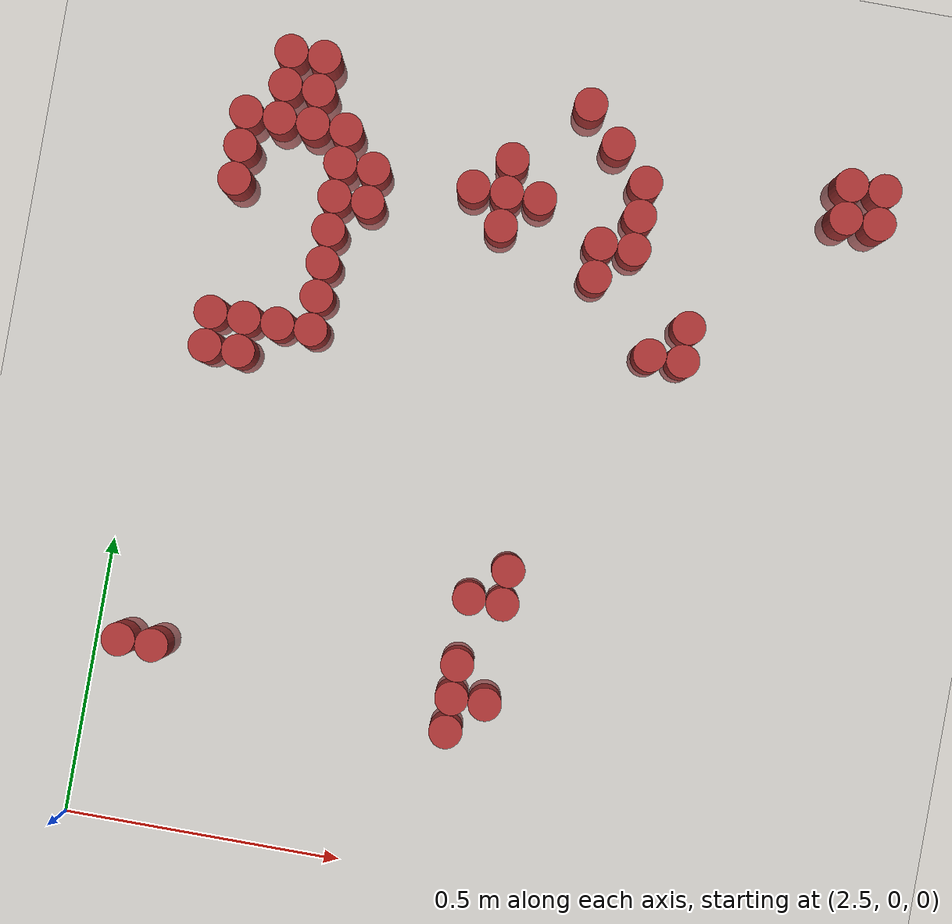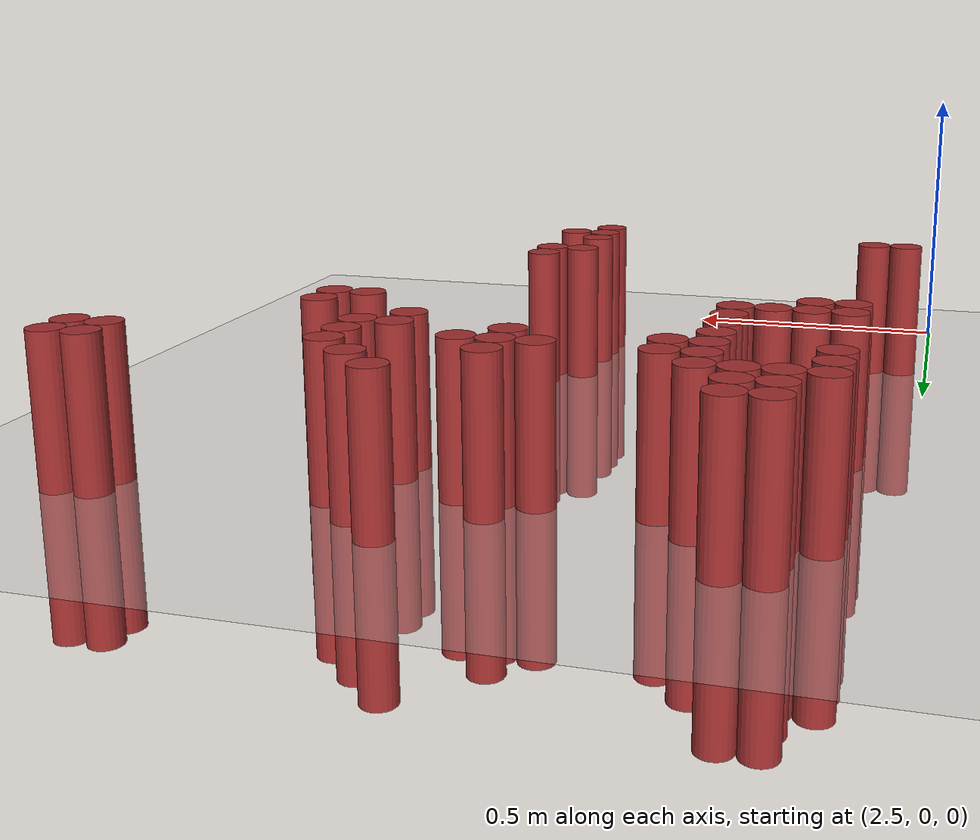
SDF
<sdf version="1.6">
 <world name="default">
  <model name="ground_plane">
   <static>1</static>
   <link name="link">
    <collision name="collision">
     <geometry><plane><normal>0 0 1</normal><size>100 100</size></plane></geometry>
     <surface><friction><ode><mu>100</mu><mu2>50</mu2></ode></friction></surface>
    </collision>
    <visual name="visual">
     <cast_shadows>0</cast_shadows>
     <geometry><plane><normal>0 0 1</normal><size>100 100</size></plane></geometry>
     <material>
      <script><uri>file://media/materials/scripts/gazebo.material</uri><name>Gazebo/Grey</name></script>
     </material>
    </visual>
   </link>
  </model>
  <model name="unit_cylinder_169">
   <static>1</static>
   <pose>2.670000 1.410000 0.000000 0.000000 0.000000 0.000000</pose>
   <link name="link">
    <inertial>
     <mass>1</mass>
     <inertia><ixx>0.145833</ixx><ixy>0</ixy><ixz>0</ixz><iyy>0.145833</iyy><iyz>0</iyz><izz>0.125</izz></inertia>
    </inertial>
    <collision name="collision">
     <geometry><cylinder><radius>0.030000</radius><length>0.5</length></cylinder></geometry>
    </collision>
    <visual name="visual">
     <geometry><cylinder><radius>0.030000</radius><length>0.5</length></cylinder></geometry>
     <material>
      <ambient>0.648000 0.192000 0.192000 1</ambient>
      <diffuse>0.648000 0.192000 0.192000 1</diffuse>
     </material>
     <material>
      <script><name>Gazebo/Grey</name><uri>file://media/materials/scripts/gazebo.material</uri></script>
     </material>
    </visual>
   </link>
  </model>
  <model name="unit_cylinder_170">
   <static>1</static>
   <pose>2.730000 1.410000 0.000000 0.000000 0.000000 0.000000</pose>
   <link name="link">
    <inertial>
     <mass>1</mass>
     <inertia><ixx>0.145833</ixx><ixy>0</ixy><ixz>0</ixz><iyy>0.145833</iyy><iyz>0</iyz><izz>0.125</izz></inertia>
    </inertial>
    <collision name="collision">
     <geometry><cylinder><radius>0.030000</radius><length>0.5</length></cylinder></geometry>
    </collision>
    <visual name="visual">
     <geometry><cylinder><radius>0.030000</radius><length>0.5</length></cylinder></geometry>
     <material>
      <ambient>0.648000 0.192000 0.192000 1</ambient>
      <diffuse>0.648000 0.192000 0.192000 1</diffuse>
     </material>
     <material>
      <script><name>Gazebo/Grey</name><uri>file://media/materials/scripts/gazebo.material</uri></script>
     </material>
    </visual>
   </link>
  </model>
  <model name="unit_cylinder_171">
   <static>1</static>
   <pose>3.210000 1.410000 0.000000 0.000000 0.000000 0.000000</pose>
   <link name="link">
    <inertial>
     <mass>1</mass>
     <inertia><ixx>0.145833</ixx><ixy>0</ixy><ixz>0</ixz><iyy>0.145833</iyy><iyz>0</iyz><izz>0.125</izz></inertia>
    </inertial>
    <collision name="collision">
     <geometry><cylinder><radius>0.030000</radius><length>0.5</length></cylinder></geometry>
    </collision>
    <visual name="visual">
     <geometry><cylinder><radius>0.030000</radius><length>0.5</length></cylinder></geometry>
     <material>
      <ambient>0.648000 0.192000 0.192000 1</ambient>
      <diffuse>0.648000 0.192000 0.192000 1</diffuse>
     </material>
     <material>
      <script><name>Gazebo/Grey</name><uri>file://media/materials/scripts/gazebo.material</uri></script>
     </material>
    </visual>
   </link>
  </model>
  <model name="unit_cylinder_178">
   <static>1</static>
   <pose>2.670000 1.350000 0.000000 0.000000 0.000000 0.000000</pose>
   <link name="link">
    <inertial>
     <mass>1</mass>
     <inertia><ixx>0.145833</ixx><ixy>0</ixy><ixz>0</ixz><iyy>0.145833</iyy><iyz>0</iyz><izz>0.125</izz></inertia>
    </inertial>
    <collision name="collision">
     <geometry><cylinder><radius>0.030000</radius><length>0.5</length></cylinder></geometry>
    </collision>
    <visual name="visual">
     <geometry><cylinder><radius>0.030000</radius><length>0.5</length></cylinder></geometry>
     <material>
      <ambient>0.648000 0.192000 0.192000 1</ambient>
      <diffuse>0.648000 0.192000 0.192000 1</diffuse>
     </material>
     <material>
      <script><name>Gazebo/Grey</name><uri>file://media/materials/scripts/gazebo.material</uri></script>
     </material>
    </visual>
   </link>
  </model>
  <model name="unit_cylinder_179">
   <static>1</static>
   <pose>2.730000 1.350000 0.000000 0.000000 0.000000 0.000000</pose>
   <link name="link">
    <inertial>
     <mass>1</mass>
     <inertia><ixx>0.145833</ixx><ixy>0</ixy><ixz>0</ixz><iyy>0.145833</iyy><iyz>0</iyz><izz>0.125</izz></inertia>
    </inertial>
    <collision name="collision">
     <geometry><cylinder><radius>0.030000</radius><length>0.5</length></cylinder></geometry>
    </collision>
    <visual name="visual">
     <geometry><cylinder><radius>0.030000</radius><length>0.5</length></cylinder></geometry>
     <material>
      <ambient>0.648000 0.192000 0.192000 1</ambient>
      <diffuse>0.648000 0.192000 0.192000 1</diffuse>
     </material>
     <material>
      <script><name>Gazebo/Grey</name><uri>file://media/materials/scripts/gazebo.material</uri></script>
     </material>
    </visual>
   </link>
  </model>
  <model name="unit_cylinder_180">
   <static>1</static>
   <pose>3.270000 1.350000 0.000000 0.000000 0.000000 0.000000</pose>
   <link name="link">
    <inertial>
     <mass>1</mass>
     <inertia><ixx>0.145833</ixx><ixy>0</ixy><ixz>0</ixz><iyy>0.145833</iyy><iyz>0</iyz><izz>0.125</izz></inertia>
    </inertial>
    <collision name="collision">
     <geometry><cylinder><radius>0.030000</radius><length>0.5</length></cylinder></geometry>
    </collision>
    <visual name="visual">
     <geometry><cylinder><radius>0.030000</radius><length>0.5</length></cylinder></geometry>
     <material>
      <ambient>0.648000 0.192000 0.192000 1</ambient>
      <diffuse>0.648000 0.192000 0.192000 1</diffuse>
     </material>
     <material>
      <script><name>Gazebo/Grey</name><uri>file://media/materials/scripts/gazebo.material</uri></script>
     </material>
    </visual>
   </link>
  </model>
  <model name="unit_cylinder_181">
   <static>1</static>
   <pose>3.690000 1.350000 0.000000 0.000000 0.000000 0.000000</pose>
   <link name="link">
    <inertial>
     <mass>1</mass>
     <inertia><ixx>0.145833</ixx><ixy>0</ixy><ixz>0</ixz><iyy>0.145833</iyy><iyz>0</iyz><izz>0.125</izz></inertia>
    </inertial>
    <collision name="collision">
     <geometry><cylinder><radius>0.030000</radius><length>0.5</length></cylinder></geometry>
    </collision>
    <visual name="visual">
     <geometry><cylinder><radius>0.030000</radius><length>0.5</length></cylinder></geometry>
     <material>
      <ambient>0.648000 0.192000 0.192000 1</ambient>
      <diffuse>0.648000 0.192000 0.192000 1</diffuse>
     </material>
     <material>
      <script><name>Gazebo/Grey</name><uri>file://media/materials/scripts/gazebo.material</uri></script>
     </material>
    </visual>
   </link>
  </model>
  <model name="unit_cylinder_182">
   <static>1</static>
   <pose>3.750000 1.350000 0.000000 0.000000 0.000000 0.000000</pose>
   <link name="link">
    <inertial>
     <mass>1</mass>
     <inertia><ixx>0.145833</ixx><ixy>0</ixy><ixz>0</ixz><iyy>0.145833</iyy><iyz>0</iyz><izz>0.125</izz></inertia>
    </inertial>
    <collision name="collision">
     <geometry><cylinder><radius>0.030000</radius><length>0.5</length></cylinder></geometry>
    </collision>
    <visual name="visual">
     <geometry><cylinder><radius>0.030000</radius><length>0.5</length></cylinder></geometry>
     <material>
      <ambient>0.648000 0.192000 0.192000 1</ambient>
      <diffuse>0.648000 0.192000 0.192000 1</diffuse>
     </material>
     <material>
      <script><name>Gazebo/Grey</name><uri>file://media/materials/scripts/gazebo.material</uri></script>
     </material>
    </visual>
   </link>
  </model>
  <model name="unit_cylinder_184">
   <static>1</static>
   <pose>2.610000 1.290000 0.000000 0.000000 0.000000 0.000000</pose>
   <link name="link">
    <inertial>
     <mass>1</mass>
     <inertia><ixx>0.145833</ixx><ixy>0</ixy><ixz>0</ixz><iyy>0.145833</iyy><iyz>0</iyz><izz>0.125</izz></inertia>
    </inertial>
    <collision name="collision">
     <geometry><cylinder><radius>0.030000</radius><length>0.5</length></cylinder></geometry>
    </collision>
    <visual name="visual">
     <geometry><cylinder><radius>0.030000</radius><length>0.5</length></cylinder></geometry>
     <material>
      <ambient>0.648000 0.192000 0.192000 1</ambient>
      <diffuse>0.648000 0.192000 0.192000 1</diffuse>
     </material>
     <material>
      <script><name>Gazebo/Grey</name><uri>file://media/materials/scripts/gazebo.material</uri></script>
     </material>
    </visual>
   </link>
  </model>
  <model name="unit_cylinder_185">
   <static>1</static>
   <pose>2.670000 1.290000 0.000000 0.000000 0.000000 0.000000</pose>
   <link name="link">
    <inertial>
     <mass>1</mass>
     <inertia><ixx>0.145833</ixx><ixy>0</ixy><ixz>0</ixz><iyy>0.145833</iyy><iyz>0</iyz><izz>0.125</izz></inertia>
    </inertial>
    <collision name="collision">
     <geometry><cylinder><radius>0.030000</radius><length>0.5</length></cylinder></geometry>
    </collision>
    <visual name="visual">
     <geometry><cylinder><radius>0.030000</radius><length>0.5</length></cylinder></geometry>
     <material>
      <ambient>0.648000 0.192000 0.192000 1</ambient>
      <diffuse>0.648000 0.192000 0.192000 1</diffuse>
     </material>
     <material>
      <script><name>Gazebo/Grey</name><uri>file://media/materials/scripts/gazebo.material</uri></script>
     </material>
    </visual>
   </link>
  </model>
  <model name="unit_cylinder_186">
   <static>1</static>
   <pose>2.730000 1.290000 0.000000 0.000000 0.000000 0.000000</pose>
   <link name="link">
    <inertial>
     <mass>1</mass>
     <inertia><ixx>0.145833</ixx><ixy>0</ixy><ixz>0</ixz><iyy>0.145833</iyy><iyz>0</iyz><izz>0.125</izz></inertia>
    </inertial>
    <collision name="collision">
     <geometry><cylinder><radius>0.030000</radius><length>0.5</length></cylinder></geometry>
    </collision>
    <visual name="visual">
     <geometry><cylinder><radius>0.030000</radius><length>0.5</length></cylinder></geometry>
     <material>
      <ambient>0.648000 0.192000 0.192000 1</ambient>
      <diffuse>0.648000 0.192000 0.192000 1</diffuse>
     </material>
     <material>
      <script><name>Gazebo/Grey</name><uri>file://media/materials/scripts/gazebo.material</uri></script>
     </material>
    </visual>
   </link>
  </model>
  <model name="unit_cylinder_187">
   <static>1</static>
   <pose>2.790000 1.290000 0.000000 0.000000 0.000000 0.000000</pose>
   <link name="link">
    <inertial>
     <mass>1</mass>
     <inertia><ixx>0.145833</ixx><ixy>0</ixy><ixz>0</ixz><iyy>0.145833</iyy><iyz>0</iyz><izz>0.125</izz></inertia>
    </inertial>
    <collision name="collision">
     <geometry><cylinder><radius>0.030000</radius><length>0.5</length></cylinder></geometry>
    </collision>
    <visual name="visual">
     <geometry><cylinder><radius>0.030000</radius><length>0.5</length></cylinder></geometry>
     <material>
      <ambient>0.648000 0.192000 0.192000 1</ambient>
      <diffuse>0.648000 0.192000 0.192000 1</diffuse>
     </material>
     <material>
      <script><name>Gazebo/Grey</name><uri>file://media/materials/scripts/gazebo.material</uri></script>
     </material>
    </visual>
   </link>
  </model>
  <model name="unit_cylinder_188">
   <static>1</static>
   <pose>3.090000 1.290000 0.000000 0.000000 0.000000 0.000000</pose>
   <link name="link">
    <inertial>
     <mass>1</mass>
     <inertia><ixx>0.145833</ixx><ixy>0</ixy><ixz>0</ixz><iyy>0.145833</iyy><iyz>0</iyz><izz>0.125</izz></inertia>
    </inertial>
    <collision name="collision">
     <geometry><cylinder><radius>0.030000</radius><length>0.5</length></cylinder></geometry>
    </collision>
    <visual name="visual">
     <geometry><cylinder><radius>0.030000</radius><length>0.5</length></cylinder></geometry>
     <material>
      <ambient>0.648000 0.192000 0.192000 1</ambient>
      <diffuse>0.648000 0.192000 0.192000 1</diffuse>
     </material>
     <material>
      <script><name>Gazebo/Grey</name><uri>file://media/materials/scripts/gazebo.material</uri></script>
     </material>
    </visual>
   </link>
  </model>
  <model name="unit_cylinder_189">
   <static>1</static>
   <pose>3.330000 1.290000 0.000000 0.000000 0.000000 0.000000</pose>
   <link name="link">
    <inertial>
     <mass>1</mass>
     <inertia><ixx>0.145833</ixx><ixy>0</ixy><ixz>0</ixz><iyy>0.145833</iyy><iyz>0</iyz><izz>0.125</izz></inertia>
    </inertial>
    <collision name="collision">
     <geometry><cylinder><radius>0.030000</radius><length>0.5</length></cylinder></geometry>
    </collision>
    <visual name="visual">
     <geometry><cylinder><radius>0.030000</radius><length>0.5</length></cylinder></geometry>
     <material>
      <ambient>0.648000 0.192000 0.192000 1</ambient>
      <diffuse>0.648000 0.192000 0.192000 1</diffuse>
     </material>
     <material>
      <script><name>Gazebo/Grey</name><uri>file://media/materials/scripts/gazebo.material</uri></script>
     </material>
    </visual>
   </link>
  </model>
  <model name="unit_cylinder_190">
   <static>1</static>
   <pose>3.690000 1.290000 0.000000 0.000000 0.000000 0.000000</pose>
   <link name="link">
    <inertial>
     <mass>1</mass>
     <inertia><ixx>0.145833</ixx><ixy>0</ixy><ixz>0</ixz><iyy>0.145833</iyy><iyz>0</iyz><izz>0.125</izz></inertia>
    </inertial>
    <collision name="collision">
     <geometry><cylinder><radius>0.030000</radius><length>0.5</length></cylinder></geometry>
    </collision>
    <visual name="visual">
     <geometry><cylinder><radius>0.030000</radius><length>0.5</length></cylinder></geometry>
     <material>
      <ambient>0.648000 0.192000 0.192000 1</ambient>
      <diffuse>0.648000 0.192000 0.192000 1</diffuse>
     </material>
     <material>
      <script><name>Gazebo/Grey</name><uri>file://media/materials/scripts/gazebo.material</uri></script>
     </material>
    </visual>
   </link>
  </model>
  <model name="unit_cylinder_191">
   <static>1</static>
   <pose>3.750000 1.290000 0.000000 0.000000 0.000000 0.000000</pose>
   <link name="link">
    <inertial>
     <mass>1</mass>
     <inertia><ixx>0.145833</ixx><ixy>0</ixy><ixz>0</ixz><iyy>0.145833</iyy><iyz>0</iyz><izz>0.125</izz></inertia>
    </inertial>
    <collision name="collision">
     <geometry><cylinder><radius>0.030000</radius><length>0.5</length></cylinder></geometry>
    </collision>
    <visual name="visual">
     <geometry><cylinder><radius>0.030000</radius><length>0.5</length></cylinder></geometry>
     <material>
      <ambient>0.648000 0.192000 0.192000 1</ambient>
      <diffuse>0.648000 0.192000 0.192000 1</diffuse>
     </material>
     <material>
      <script><name>Gazebo/Grey</name><uri>file://media/materials/scripts/gazebo.material</uri></script>
     </material>
    </visual>
   </link>
  </model>
  <model name="unit_cylinder_192">
   <static>1</static>
   <pose>2.610000 1.230000 0.000000 0.000000 0.000000 0.000000</pose>
   <link name="link">
    <inertial>
     <mass>1</mass>
     <inertia><ixx>0.145833</ixx><ixy>0</ixy><ixz>0</ixz><iyy>0.145833</iyy><iyz>0</iyz><izz>0.125</izz></inertia>
    </inertial>
    <collision name="collision">
     <geometry><cylinder><radius>0.030000</radius><length>0.5</length></cylinder></geometry>
    </collision>
    <visual name="visual">
     <geometry><cylinder><radius>0.030000</radius><length>0.5</length></cylinder></geometry>
     <material>
      <ambient>0.648000 0.192000 0.192000 1</ambient>
      <diffuse>0.648000 0.192000 0.192000 1</diffuse>
     </material>
     <material>
      <script><name>Gazebo/Grey</name><uri>file://media/materials/scripts/gazebo.material</uri></script>
     </material>
    </visual>
   </link>
  </model>
  <model name="unit_cylinder_193">
   <static>1</static>
   <pose>2.790000 1.230000 0.000000 0.000000 0.000000 0.000000</pose>
   <link name="link">
    <inertial>
     <mass>1</mass>
     <inertia><ixx>0.145833</ixx><ixy>0</ixy><ixz>0</ixz><iyy>0.145833</iyy><iyz>0</iyz><izz>0.125</izz></inertia>
    </inertial>
    <collision name="collision">
     <geometry><cylinder><radius>0.030000</radius><length>0.5</length></cylinder></geometry>
    </collision>
    <visual name="visual">
     <geometry><cylinder><radius>0.030000</radius><length>0.5</length></cylinder></geometry>
     <material>
      <ambient>0.648000 0.192000 0.192000 1</ambient>
      <diffuse>0.648000 0.192000 0.192000 1</diffuse>
     </material>
     <material>
      <script><name>Gazebo/Grey</name><uri>file://media/materials/scripts/gazebo.material</uri></script>
     </material>
    </visual>
   </link>
  </model>
  <model name="unit_cylinder_194">
   <static>1</static>
   <pose>2.850000 1.230000 0.000000 0.000000 0.000000 0.000000</pose>
   <link name="link">
    <inertial>
     <mass>1</mass>
     <inertia><ixx>0.145833</ixx><ixy>0</ixy><ixz>0</ixz><iyy>0.145833</iyy><iyz>0</iyz><izz>0.125</izz></inertia>
    </inertial>
    <collision name="collision">
     <geometry><cylinder><radius>0.030000</radius><length>0.5</length></cylinder></geometry>
    </collision>
    <visual name="visual">
     <geometry><cylinder><radius>0.030000</radius><length>0.5</length></cylinder></geometry>
     <material>
      <ambient>0.648000 0.192000 0.192000 1</ambient>
      <diffuse>0.648000 0.192000 0.192000 1</diffuse>
     </material>
     <material>
      <script><name>Gazebo/Grey</name><uri>file://media/materials/scripts/gazebo.material</uri></script>
     </material>
    </visual>
   </link>
  </model>
  <model name="unit_cylinder_195">
   <static>1</static>
   <pose>3.030000 1.230000 0.000000 0.000000 0.000000 0.000000</pose>
   <link name="link">
    <inertial>
     <mass>1</mass>
     <inertia><ixx>0.145833</ixx><ixy>0</ixy><ixz>0</ixz><iyy>0.145833</iyy><iyz>0</iyz><izz>0.125</izz></inertia>
    </inertial>
    <collision name="collision">
     <geometry><cylinder><radius>0.030000</radius><length>0.5</length></cylinder></geometry>
    </collision>
    <visual name="visual">
     <geometry><cylinder><radius>0.030000</radius><length>0.5</length></cylinder></geometry>
     <material>
      <ambient>0.648000 0.192000 0.192000 1</ambient>
      <diffuse>0.648000 0.192000 0.192000 1</diffuse>
     </material>
     <material>
      <script><name>Gazebo/Grey</name><uri>file://media/materials/scripts/gazebo.material</uri></script>
     </material>
    </visual>
   </link>
  </model>
  <model name="unit_cylinder_196">
   <static>1</static>
   <pose>3.090000 1.230000 0.000000 0.000000 0.000000 0.000000</pose>
   <link name="link">
    <inertial>
     <mass>1</mass>
     <inertia><ixx>0.145833</ixx><ixy>0</ixy><ixz>0</ixz><iyy>0.145833</iyy><iyz>0</iyz><izz>0.125</izz></inertia>
    </inertial>
    <collision name="collision">
     <geometry><cylinder><radius>0.030000</radius><length>0.5</length></cylinder></geometry>
    </collision>
    <visual name="visual">
     <geometry><cylinder><radius>0.030000</radius><length>0.5</length></cylinder></geometry>
     <material>
      <ambient>0.648000 0.192000 0.192000 1</ambient>
      <diffuse>0.648000 0.192000 0.192000 1</diffuse>
     </material>
     <material>
      <script><name>Gazebo/Grey</name><uri>file://media/materials/scripts/gazebo.material</uri></script>
     </material>
    </visual>
   </link>
  </model>
  <model name="unit_cylinder_197">
   <static>1</static>
   <pose>3.150000 1.230000 0.000000 0.000000 0.000000 0.000000</pose>
   <link name="link">
    <inertial>
     <mass>1</mass>
     <inertia><ixx>0.145833</ixx><ixy>0</ixy><ixz>0</ixz><iyy>0.145833</iyy><iyz>0</iyz><izz>0.125</izz></inertia>
    </inertial>
    <collision name="collision">
     <geometry><cylinder><radius>0.030000</radius><length>0.5</length></cylinder></geometry>
    </collision>
    <visual name="visual">
     <geometry><cylinder><radius>0.030000</radius><length>0.5</length></cylinder></geometry>
     <material>
      <ambient>0.648000 0.192000 0.192000 1</ambient>
      <diffuse>0.648000 0.192000 0.192000 1</diffuse>
     </material>
     <material>
      <script><name>Gazebo/Grey</name><uri>file://media/materials/scripts/gazebo.material</uri></script>
     </material>
    </visual>
   </link>
  </model>
  <model name="unit_cylinder_198">
   <static>1</static>
   <pose>3.330000 1.230000 0.000000 0.000000 0.000000 0.000000</pose>
   <link name="link">
    <inertial>
     <mass>1</mass>
     <inertia><ixx>0.145833</ixx><ixy>0</ixy><ixz>0</ixz><iyy>0.145833</iyy><iyz>0</iyz><izz>0.125</izz></inertia>
    </inertial>
    <collision name="collision">
     <geometry><cylinder><radius>0.030000</radius><length>0.5</length></cylinder></geometry>
    </collision>
    <visual name="visual">
     <geometry><cylinder><radius>0.030000</radius><length>0.5</length></cylinder></geometry>
     <material>
      <ambient>0.648000 0.192000 0.192000 1</ambient>
      <diffuse>0.648000 0.192000 0.192000 1</diffuse>
     </material>
     <material>
      <script><name>Gazebo/Grey</name><uri>file://media/materials/scripts/gazebo.material</uri></script>
     </material>
    </visual>
   </link>
  </model>
  <model name="unit_cylinder_200">
   <static>1</static>
   <pose>2.610000 1.170000 0.000000 0.000000 0.000000 0.000000</pose>
   <link name="link">
    <inertial>
     <mass>1</mass>
     <inertia><ixx>0.145833</ixx><ixy>0</ixy><ixz>0</ixz><iyy>0.145833</iyy><iyz>0</iyz><izz>0.125</izz></inertia>
    </inertial>
    <collision name="collision">
     <geometry><cylinder><radius>0.030000</radius><length>0.5</length></cylinder></geometry>
    </collision>
    <visual name="visual">
     <geometry><cylinder><radius>0.030000</radius><length>0.5</length></cylinder></geometry>
     <material>
      <ambient>0.648000 0.192000 0.192000 1</ambient>
      <diffuse>0.648000 0.192000 0.192000 1</diffuse>
     </material>
     <material>
      <script><name>Gazebo/Grey</name><uri>file://media/materials/scripts/gazebo.material</uri></script>
     </material>
    </visual>
   </link>
  </model>
  <model name="unit_cylinder_201">
   <static>1</static>
   <pose>2.790000 1.170000 0.000000 0.000000 0.000000 0.000000</pose>
   <link name="link">
    <inertial>
     <mass>1</mass>
     <inertia><ixx>0.145833</ixx><ixy>0</ixy><ixz>0</ixz><iyy>0.145833</iyy><iyz>0</iyz><izz>0.125</izz></inertia>
    </inertial>
    <collision name="collision">
     <geometry><cylinder><radius>0.030000</radius><length>0.5</length></cylinder></geometry>
    </collision>
    <visual name="visual">
     <geometry><cylinder><radius>0.030000</radius><length>0.5</length></cylinder></geometry>
     <material>
      <ambient>0.648000 0.192000 0.192000 1</ambient>
      <diffuse>0.648000 0.192000 0.192000 1</diffuse>
     </material>
     <material>
      <script><name>Gazebo/Grey</name><uri>file://media/materials/scripts/gazebo.material</uri></script>
     </material>
    </visual>
   </link>
  </model>
  <model name="unit_cylinder_202">
   <static>1</static>
   <pose>2.850000 1.170000 0.000000 0.000000 0.000000 0.000000</pose>
   <link name="link">
    <inertial>
     <mass>1</mass>
     <inertia><ixx>0.145833</ixx><ixy>0</ixy><ixz>0</ixz><iyy>0.145833</iyy><iyz>0</iyz><izz>0.125</izz></inertia>
    </inertial>
    <collision name="collision">
     <geometry><cylinder><radius>0.030000</radius><length>0.5</length></cylinder></geometry>
    </collision>
    <visual name="visual">
     <geometry><cylinder><radius>0.030000</radius><length>0.5</length></cylinder></geometry>
     <material>
      <ambient>0.648000 0.192000 0.192000 1</ambient>
      <diffuse>0.648000 0.192000 0.192000 1</diffuse>
     </material>
     <material>
      <script><name>Gazebo/Grey</name><uri>file://media/materials/scripts/gazebo.material</uri></script>
     </material>
    </visual>
   </link>
  </model>
  <model name="unit_cylinder_203">
   <static>1</static>
   <pose>3.090000 1.170000 0.000000 0.000000 0.000000 0.000000</pose>
   <link name="link">
    <inertial>
     <mass>1</mass>
     <inertia><ixx>0.145833</ixx><ixy>0</ixy><ixz>0</ixz><iyy>0.145833</iyy><iyz>0</iyz><izz>0.125</izz></inertia>
    </inertial>
    <collision name="collision">
     <geometry><cylinder><radius>0.030000</radius><length>0.5</length></cylinder></geometry>
    </collision>
    <visual name="visual">
     <geometry><cylinder><radius>0.030000</radius><length>0.5</length></cylinder></geometry>
     <material>
      <ambient>0.648000 0.192000 0.192000 1</ambient>
      <diffuse>0.648000 0.192000 0.192000 1</diffuse>
     </material>
     <material>
      <script><name>Gazebo/Grey</name><uri>file://media/materials/scripts/gazebo.material</uri></script>
     </material>
    </visual>
   </link>
  </model>
  <model name="unit_cylinder_204">
   <static>1</static>
   <pose>3.270000 1.170000 0.000000 0.000000 0.000000 0.000000</pose>
   <link name="link">
    <inertial>
     <mass>1</mass>
     <inertia><ixx>0.145833</ixx><ixy>0</ixy><ixz>0</ixz><iyy>0.145833</iyy><iyz>0</iyz><izz>0.125</izz></inertia>
    </inertial>
    <collision name="collision">
     <geometry><cylinder><radius>0.030000</radius><length>0.5</length></cylinder></geometry>
    </collision>
    <visual name="visual">
     <geometry><cylinder><radius>0.030000</radius><length>0.5</length></cylinder></geometry>
     <material>
      <ambient>0.648000 0.192000 0.192000 1</ambient>
      <diffuse>0.648000 0.192000 0.192000 1</diffuse>
     </material>
     <material>
      <script><name>Gazebo/Grey</name><uri>file://media/materials/scripts/gazebo.material</uri></script>
     </material>
    </visual>
   </link>
  </model>
  <model name="unit_cylinder_205">
   <static>1</static>
   <pose>3.330000 1.170000 0.000000 0.000000 0.000000 0.000000</pose>
   <link name="link">
    <inertial>
     <mass>1</mass>
     <inertia><ixx>0.145833</ixx><ixy>0</ixy><ixz>0</ixz><iyy>0.145833</iyy><iyz>0</iyz><izz>0.125</izz></inertia>
    </inertial>
    <collision name="collision">
     <geometry><cylinder><radius>0.030000</radius><length>0.5</length></cylinder></geometry>
    </collision>
    <visual name="visual">
     <geometry><cylinder><radius>0.030000</radius><length>0.5</length></cylinder></geometry>
     <material>
      <ambient>0.648000 0.192000 0.192000 1</ambient>
      <diffuse>0.648000 0.192000 0.192000 1</diffuse>
     </material>
     <material>
      <script><name>Gazebo/Grey</name><uri>file://media/materials/scripts/gazebo.material</uri></script>
     </material>
    </visual>
   </link>
  </model>
  <model name="unit_cylinder_208">
   <static>1</static>
   <pose>2.790000 1.110000 0.000000 0.000000 0.000000 0.000000</pose>
   <link name="link">
    <inertial>
     <mass>1</mass>
     <inertia><ixx>0.145833</ixx><ixy>0</ixy><ixz>0</ixz><iyy>0.145833</iyy><iyz>0</iyz><izz>0.125</izz></inertia>
    </inertial>
    <collision name="collision">
     <geometry><cylinder><radius>0.030000</radius><length>0.5</length></cylinder></geometry>
    </collision>
    <visual name="visual">
     <geometry><cylinder><radius>0.030000</radius><length>0.5</length></cylinder></geometry>
     <material>
      <ambient>0.648000 0.192000 0.192000 1</ambient>
      <diffuse>0.648000 0.192000 0.192000 1</diffuse>
     </material>
     <material>
      <script><name>Gazebo/Grey</name><uri>file://media/materials/scripts/gazebo.material</uri></script>
     </material>
    </visual>
   </link>
  </model>
  <model name="unit_cylinder_209">
   <static>1</static>
   <pose>3.270000 1.110000 0.000000 0.000000 0.000000 0.000000</pose>
   <link name="link">
    <inertial>
     <mass>1</mass>
     <inertia><ixx>0.145833</ixx><ixy>0</ixy><ixz>0</ixz><iyy>0.145833</iyy><iyz>0</iyz><izz>0.125</izz></inertia>
    </inertial>
    <collision name="collision">
     <geometry><cylinder><radius>0.030000</radius><length>0.5</length></cylinder></geometry>
    </collision>
    <visual name="visual">
     <geometry><cylinder><radius>0.030000</radius><length>0.5</length></cylinder></geometry>
     <material>
      <ambient>0.648000 0.192000 0.192000 1</ambient>
      <diffuse>0.648000 0.192000 0.192000 1</diffuse>
     </material>
     <material>
      <script><name>Gazebo/Grey</name><uri>file://media/materials/scripts/gazebo.material</uri></script>
     </material>
    </visual>
   </link>
  </model>
  <model name="unit_cylinder_211">
   <static>1</static>
   <pose>2.790000 1.050000 0.000000 0.000000 0.000000 0.000000</pose>
   <link name="link">
    <inertial>
     <mass>1</mass>
     <inertia><ixx>0.145833</ixx><ixy>0</ixy><ixz>0</ixz><iyy>0.145833</iyy><iyz>0</iyz><izz>0.125</izz></inertia>
    </inertial>
    <collision name="collision">
     <geometry><cylinder><radius>0.030000</radius><length>0.5</length></cylinder></geometry>
    </collision>
    <visual name="visual">
     <geometry><cylinder><radius>0.030000</radius><length>0.5</length></cylinder></geometry>
     <material>
      <ambient>0.648000 0.192000 0.192000 1</ambient>
      <diffuse>0.648000 0.192000 0.192000 1</diffuse>
     </material>
     <material>
      <script><name>Gazebo/Grey</name><uri>file://media/materials/scripts/gazebo.material</uri></script>
     </material>
    </visual>
   </link>
  </model>
  <model name="unit_cylinder_212">
   <static>1</static>
   <pose>3.450000 1.050000 0.000000 0.000000 0.000000 0.000000</pose>
   <link name="link">
    <inertial>
     <mass>1</mass>
     <inertia><ixx>0.145833</ixx><ixy>0</ixy><ixz>0</ixz><iyy>0.145833</iyy><iyz>0</iyz><izz>0.125</izz></inertia>
    </inertial>
    <collision name="collision">
     <geometry><cylinder><radius>0.030000</radius><length>0.5</length></cylinder></geometry>
    </collision>
    <visual name="visual">
     <geometry><cylinder><radius>0.030000</radius><length>0.5</length></cylinder></geometry>
     <material>
      <ambient>0.648000 0.192000 0.192000 1</ambient>
      <diffuse>0.648000 0.192000 0.192000 1</diffuse>
     </material>
     <material>
      <script><name>Gazebo/Grey</name><uri>file://media/materials/scripts/gazebo.material</uri></script>
     </material>
    </visual>
   </link>
  </model>
  <model name="unit_cylinder_214">
   <static>1</static>
   <pose>2.790000 0.990000 0.000000 0.000000 0.000000 0.000000</pose>
   <link name="link">
    <inertial>
     <mass>1</mass>
     <inertia><ixx>0.145833</ixx><ixy>0</ixy><ixz>0</ixz><iyy>0.145833</iyy><iyz>0</iyz><izz>0.125</izz></inertia>
    </inertial>
    <collision name="collision">
     <geometry><cylinder><radius>0.030000</radius><length>0.5</length></cylinder></geometry>
    </collision>
    <visual name="visual">
     <geometry><cylinder><radius>0.030000</radius><length>0.5</length></cylinder></geometry>
     <material>
      <ambient>0.648000 0.192000 0.192000 1</ambient>
      <diffuse>0.648000 0.192000 0.192000 1</diffuse>
     </material>
     <material>
      <script><name>Gazebo/Grey</name><uri>file://media/materials/scripts/gazebo.material</uri></script>
     </material>
    </visual>
   </link>
  </model>
  <model name="unit_cylinder_215">
   <static>1</static>
   <pose>3.390000 0.990000 0.000000 0.000000 0.000000 0.000000</pose>
   <link name="link">
    <inertial>
     <mass>1</mass>
     <inertia><ixx>0.145833</ixx><ixy>0</ixy><ixz>0</ixz><iyy>0.145833</iyy><iyz>0</iyz><izz>0.125</izz></inertia>
    </inertial>
    <collision name="collision">
     <geometry><cylinder><radius>0.030000</radius><length>0.5</length></cylinder></geometry>
    </collision>
    <visual name="visual">
     <geometry><cylinder><radius>0.030000</radius><length>0.5</length></cylinder></geometry>
     <material>
      <ambient>0.648000 0.192000 0.192000 1</ambient>
      <diffuse>0.648000 0.192000 0.192000 1</diffuse>
     </material>
     <material>
      <script><name>Gazebo/Grey</name><uri>file://media/materials/scripts/gazebo.material</uri></script>
     </material>
    </visual>
   </link>
  </model>
  <model name="unit_cylinder_216">
   <static>1</static>
   <pose>3.450000 0.990000 0.000000 0.000000 0.000000 0.000000</pose>
   <link name="link">
    <inertial>
     <mass>1</mass>
     <inertia><ixx>0.145833</ixx><ixy>0</ixy><ixz>0</ixz><iyy>0.145833</iyy><iyz>0</iyz><izz>0.125</izz></inertia>
    </inertial>
    <collision name="collision">
     <geometry><cylinder><radius>0.030000</radius><length>0.5</length></cylinder></geometry>
    </collision>
    <visual name="visual">
     <geometry><cylinder><radius>0.030000</radius><length>0.5</length></cylinder></geometry>
     <material>
      <ambient>0.648000 0.192000 0.192000 1</ambient>
      <diffuse>0.648000 0.192000 0.192000 1</diffuse>
     </material>
     <material>
      <script><name>Gazebo/Grey</name><uri>file://media/materials/scripts/gazebo.material</uri></script>
     </material>
    </visual>
   </link>
  </model>
  <model name="unit_cylinder_218">
   <static>1</static>
   <pose>2.610000 0.930000 0.000000 0.000000 0.000000 0.000000</pose>
   <link name="link">
    <inertial>
     <mass>1</mass>
     <inertia><ixx>0.145833</ixx><ixy>0</ixy><ixz>0</ixz><iyy>0.145833</iyy><iyz>0</iyz><izz>0.125</izz></inertia>
    </inertial>
    <collision name="collision">
     <geometry><cylinder><radius>0.030000</radius><length>0.5</length></cylinder></geometry>
    </collision>
    <visual name="visual">
     <geometry><cylinder><radius>0.030000</radius><length>0.5</length></cylinder></geometry>
     <material>
      <ambient>0.648000 0.192000 0.192000 1</ambient>
      <diffuse>0.648000 0.192000 0.192000 1</diffuse>
     </material>
     <material>
      <script><name>Gazebo/Grey</name><uri>file://media/materials/scripts/gazebo.material</uri></script>
     </material>
    </visual>
   </link>
  </model>
  <model name="unit_cylinder_219">
   <static>1</static>
   <pose>2.670000 0.930000 0.000000 0.000000 0.000000 0.000000</pose>
   <link name="link">
    <inertial>
     <mass>1</mass>
     <inertia><ixx>0.145833</ixx><ixy>0</ixy><ixz>0</ixz><iyy>0.145833</iyy><iyz>0</iyz><izz>0.125</izz></inertia>
    </inertial>
    <collision name="collision">
     <geometry><cylinder><radius>0.030000</radius><length>0.5</length></cylinder></geometry>
    </collision>
    <visual name="visual">
     <geometry><cylinder><radius>0.030000</radius><length>0.5</length></cylinder></geometry>
     <material>
      <ambient>0.648000 0.192000 0.192000 1</ambient>
      <diffuse>0.648000 0.192000 0.192000 1</diffuse>
     </material>
     <material>
      <script><name>Gazebo/Grey</name><uri>file://media/materials/scripts/gazebo.material</uri></script>
     </material>
    </visual>
   </link>
  </model>
  <model name="unit_cylinder_220">
   <static>1</static>
   <pose>2.730000 0.930000 0.000000 0.000000 0.000000 0.000000</pose>
   <link name="link">
    <inertial>
     <mass>1</mass>
     <inertia><ixx>0.145833</ixx><ixy>0</ixy><ixz>0</ixz><iyy>0.145833</iyy><iyz>0</iyz><izz>0.125</izz></inertia>
    </inertial>
    <collision name="collision">
     <geometry><cylinder><radius>0.030000</radius><length>0.5</length></cylinder></geometry>
    </collision>
    <visual name="visual">
     <geometry><cylinder><radius>0.030000</radius><length>0.5</length></cylinder></geometry>
     <material>
      <ambient>0.648000 0.192000 0.192000 1</ambient>
      <diffuse>0.648000 0.192000 0.192000 1</diffuse>
     </material>
     <material>
      <script><name>Gazebo/Grey</name><uri>file://media/materials/scripts/gazebo.material</uri></script>
     </material>
    </visual>
   </link>
  </model>
  <model name="unit_cylinder_221">
   <static>1</static>
   <pose>2.790000 0.930000 0.000000 0.000000 0.000000 0.000000</pose>
   <link name="link">
    <inertial>
     <mass>1</mass>
     <inertia><ixx>0.145833</ixx><ixy>0</ixy><ixz>0</ixz><iyy>0.145833</iyy><iyz>0</iyz><izz>0.125</izz></inertia>
    </inertial>
    <collision name="collision">
     <geometry><cylinder><radius>0.030000</radius><length>0.5</length></cylinder></geometry>
    </collision>
    <visual name="visual">
     <geometry><cylinder><radius>0.030000</radius><length>0.5</length></cylinder></geometry>
     <material>
      <ambient>0.648000 0.192000 0.192000 1</ambient>
      <diffuse>0.648000 0.192000 0.192000 1</diffuse>
     </material>
     <material>
      <script><name>Gazebo/Grey</name><uri>file://media/materials/scripts/gazebo.material</uri></script>
     </material>
    </visual>
   </link>
  </model>
  <model name="unit_cylinder_222">
   <static>1</static>
   <pose>2.610000 0.870000 0.000000 0.000000 0.000000 0.000000</pose>
   <link name="link">
    <inertial>
     <mass>1</mass>
     <inertia><ixx>0.145833</ixx><ixy>0</ixy><ixz>0</ixz><iyy>0.145833</iyy><iyz>0</iyz><izz>0.125</izz></inertia>
    </inertial>
    <collision name="collision">
     <geometry><cylinder><radius>0.030000</radius><length>0.5</length></cylinder></geometry>
    </collision>
    <visual name="visual">
     <geometry><cylinder><radius>0.030000</radius><length>0.5</length></cylinder></geometry>
     <material>
      <ambient>0.648000 0.192000 0.192000 1</ambient>
      <diffuse>0.648000 0.192000 0.192000 1</diffuse>
     </material>
     <material>
      <script><name>Gazebo/Grey</name><uri>file://media/materials/scripts/gazebo.material</uri></script>
     </material>
    </visual>
   </link>
  </model>
  <model name="unit_cylinder_223">
   <static>1</static>
   <pose>2.670000 0.870000 0.000000 0.000000 0.000000 0.000000</pose>
   <link name="link">
    <inertial>
     <mass>1</mass>
     <inertia><ixx>0.145833</ixx><ixy>0</ixy><ixz>0</ixz><iyy>0.145833</iyy><iyz>0</iyz><izz>0.125</izz></inertia>
    </inertial>
    <collision name="collision">
     <geometry><cylinder><radius>0.030000</radius><length>0.5</length></cylinder></geometry>
    </collision>
    <visual name="visual">
     <geometry><cylinder><radius>0.030000</radius><length>0.5</length></cylinder></geometry>
     <material>
      <ambient>0.648000 0.192000 0.192000 1</ambient>
      <diffuse>0.648000 0.192000 0.192000 1</diffuse>
     </material>
     <material>
      <script><name>Gazebo/Grey</name><uri>file://media/materials/scripts/gazebo.material</uri></script>
     </material>
    </visual>
   </link>
  </model>
  <model name="unit_cylinder_225">
   <static>1</static>
   <pose>3.210000 0.570000 0.000000 0.000000 0.000000 0.000000</pose>
   <link name="link">
    <inertial>
     <mass>1</mass>
     <inertia><ixx>0.145833</ixx><ixy>0</ixy><ixz>0</ixz><iyy>0.145833</iyy><iyz>0</iyz><izz>0.125</izz></inertia>
    </inertial>
    <collision name="collision">
     <geometry><cylinder><radius>0.030000</radius><length>0.5</length></cylinder></geometry>
    </collision>
    <visual name="visual">
     <geometry><cylinder><radius>0.030000</radius><length>0.5</length></cylinder></geometry>
     <material>
      <ambient>0.648000 0.192000 0.192000 1</ambient>
      <diffuse>0.648000 0.192000 0.192000 1</diffuse>
     </material>
     <material>
      <script><name>Gazebo/Grey</name><uri>file://media/materials/scripts/gazebo.material</uri></script>
     </material>
    </visual>
   </link>
  </model>
  <model name="unit_cylinder_228">
   <static>1</static>
   <pose>3.150000 0.510000 0.000000 0.000000 0.000000 0.000000</pose>
   <link name="link">
    <inertial>
     <mass>1</mass>
     <inertia><ixx>0.145833</ixx><ixy>0</ixy><ixz>0</ixz><iyy>0.145833</iyy><iyz>0</iyz><izz>0.125</izz></inertia>
    </inertial>
    <collision name="collision">
     <geometry><cylinder><radius>0.030000</radius><length>0.5</length></cylinder></geometry>
    </collision>
    <visual name="visual">
     <geometry><cylinder><radius>0.030000</radius><length>0.5</length></cylinder></geometry>
     <material>
      <ambient>0.648000 0.192000 0.192000 1</ambient>
      <diffuse>0.648000 0.192000 0.192000 1</diffuse>
     </material>
     <material>
      <script><name>Gazebo/Grey</name><uri>file://media/materials/scripts/gazebo.material</uri></script>
     </material>
    </visual>
   </link>
  </model>
  <model name="unit_cylinder_229">
   <static>1</static>
   <pose>3.210000 0.510000 0.000000 0.000000 0.000000 0.000000</pose>
   <link name="link">
    <inertial>
     <mass>1</mass>
     <inertia><ixx>0.145833</ixx><ixy>0</ixy><ixz>0</ixz><iyy>0.145833</iyy><iyz>0</iyz><izz>0.125</izz></inertia>
    </inertial>
    <collision name="collision">
     <geometry><cylinder><radius>0.030000</radius><length>0.5</length></cylinder></geometry>
    </collision>
    <visual name="visual">
     <geometry><cylinder><radius>0.030000</radius><length>0.5</length></cylinder></geometry>
     <material>
      <ambient>0.648000 0.192000 0.192000 1</ambient>
      <diffuse>0.648000 0.192000 0.192000 1</diffuse>
     </material>
     <material>
      <script><name>Gazebo/Grey</name><uri>file://media/materials/scripts/gazebo.material</uri></script>
     </material>
    </visual>
   </link>
  </model>
  <model name="unit_cylinder_232">
   <static>1</static>
   <pose>3.150000 0.390000 0.000000 0.000000 0.000000 0.000000</pose>
   <link name="link">
    <inertial>
     <mass>1</mass>
     <inertia><ixx>0.145833</ixx><ixy>0</ixy><ixz>0</ixz><iyy>0.145833</iyy><iyz>0</iyz><izz>0.125</izz></inertia>
    </inertial>
    <collision name="collision">
     <geometry><cylinder><radius>0.030000</radius><length>0.5</length></cylinder></geometry>
    </collision>
    <visual name="visual">
     <geometry><cylinder><radius>0.030000</radius><length>0.5</length></cylinder></geometry>
     <material>
      <ambient>0.648000 0.192000 0.192000 1</ambient>
      <diffuse>0.648000 0.192000 0.192000 1</diffuse>
     </material>
     <material>
      <script><name>Gazebo/Grey</name><uri>file://media/materials/scripts/gazebo.material</uri></script>
     </material>
    </visual>
   </link>
  </model>
  <model name="unit_cylinder_234">
   <static>1</static>
   <pose>2.550000 0.330000 0.000000 0.000000 0.000000 0.000000</pose>
   <link name="link">
    <inertial>
     <mass>1</mass>
     <inertia><ixx>0.145833</ixx><ixy>0</ixy><ixz>0</ixz><iyy>0.145833</iyy><iyz>0</iyz><izz>0.125</izz></inertia>
    </inertial>
    <collision name="collision">
     <geometry><cylinder><radius>0.030000</radius><length>0.5</length></cylinder></geometry>
    </collision>
    <visual name="visual">
     <geometry><cylinder><radius>0.030000</radius><length>0.5</length></cylinder></geometry>
     <material>
      <ambient>0.648000 0.192000 0.192000 1</ambient>
      <diffuse>0.648000 0.192000 0.192000 1</diffuse>
     </material>
     <material>
      <script><name>Gazebo/Grey</name><uri>file://media/materials/scripts/gazebo.material</uri></script>
     </material>
    </visual>
   </link>
  </model>
  <model name="unit_cylinder_235">
   <static>1</static>
   <pose>2.610000 0.330000 0.000000 0.000000 0.000000 0.000000</pose>
   <link name="link">
    <inertial>
     <mass>1</mass>
     <inertia><ixx>0.145833</ixx><ixy>0</ixy><ixz>0</ixz><iyy>0.145833</iyy><iyz>0</iyz><izz>0.125</izz></inertia>
    </inertial>
    <collision name="collision">
     <geometry><cylinder><radius>0.030000</radius><length>0.5</length></cylinder></geometry>
    </collision>
    <visual name="visual">
     <geometry><cylinder><radius>0.030000</radius><length>0.5</length></cylinder></geometry>
     <material>
      <ambient>0.648000 0.192000 0.192000 1</ambient>
      <diffuse>0.648000 0.192000 0.192000 1</diffuse>
     </material>
     <material>
      <script><name>Gazebo/Grey</name><uri>file://media/materials/scripts/gazebo.material</uri></script>
     </material>
    </visual>
   </link>
  </model>
  <model name="unit_cylinder_236">
   <static>1</static>
   <pose>3.150000 0.330000 0.000000 0.000000 0.000000 0.000000</pose>
   <link name="link">
    <inertial>
     <mass>1</mass>
     <inertia><ixx>0.145833</ixx><ixy>0</ixy><ixz>0</ixz><iyy>0.145833</iyy><iyz>0</iyz><izz>0.125</izz></inertia>
    </inertial>
    <collision name="collision">
     <geometry><cylinder><radius>0.030000</radius><length>0.5</length></cylinder></geometry>
    </collision>
    <visual name="visual">
     <geometry><cylinder><radius>0.030000</radius><length>0.5</length></cylinder></geometry>
     <material>
      <ambient>0.648000 0.192000 0.192000 1</ambient>
      <diffuse>0.648000 0.192000 0.192000 1</diffuse>
     </material>
     <material>
      <script><name>Gazebo/Grey</name><uri>file://media/materials/scripts/gazebo.material</uri></script>
     </material>
    </visual>
   </link>
  </model>
  <model name="unit_cylinder_237">
   <static>1</static>
   <pose>3.210000 0.330000 0.000000 0.000000 0.000000 0.000000</pose>
   <link name="link">
    <inertial>
     <mass>1</mass>
     <inertia><ixx>0.145833</ixx><ixy>0</ixy><ixz>0</ixz><iyy>0.145833</iyy><iyz>0</iyz><izz>0.125</izz></inertia>
    </inertial>
    <collision name="collision">
     <geometry><cylinder><radius>0.030000</radius><length>0.5</length></cylinder></geometry>
    </collision>
    <visual name="visual">
     <geometry><cylinder><radius>0.030000</radius><length>0.5</length></cylinder></geometry>
     <material>
      <ambient>0.648000 0.192000 0.192000 1</ambient>
      <diffuse>0.648000 0.192000 0.192000 1</diffuse>
     </material>
     <material>
      <script><name>Gazebo/Grey</name><uri>file://media/materials/scripts/gazebo.material</uri></script>
     </material>
    </visual>
   </link>
  </model>
  <model name="unit_cylinder_243">
   <static>1</static>
   <pose>3.150000 0.270000 0.000000 0.000000 0.000000 0.000000</pose>
   <link name="link">
    <inertial>
     <mass>1</mass>
     <inertia><ixx>0.145833</ixx><ixy>0</ixy><ixz>0</ixz><iyy>0.145833</iyy><iyz>0</iyz><izz>0.125</izz></inertia>
    </inertial>
    <collision name="collision">
     <geometry><cylinder><radius>0.030000</radius><length>0.5</length></cylinder></geometry>
    </collision>
    <visual name="visual">
     <geometry><cylinder><radius>0.030000</radius><length>0.5</length></cylinder></geometry>
     <material>
      <ambient>0.648000 0.192000 0.192000 1</ambient>
      <diffuse>0.648000 0.192000 0.192000 1</diffuse>
     </material>
     <material>
      <script><name>Gazebo/Grey</name><uri>file://media/materials/scripts/gazebo.material</uri></script>
     </material>
    </visual>
   </link>
  </model>
 </world>
</sdf>
